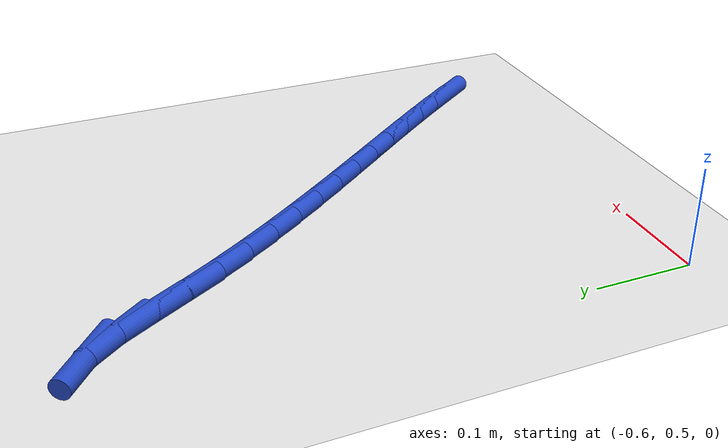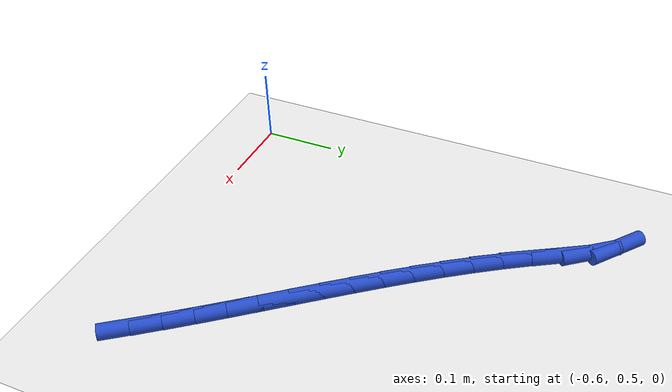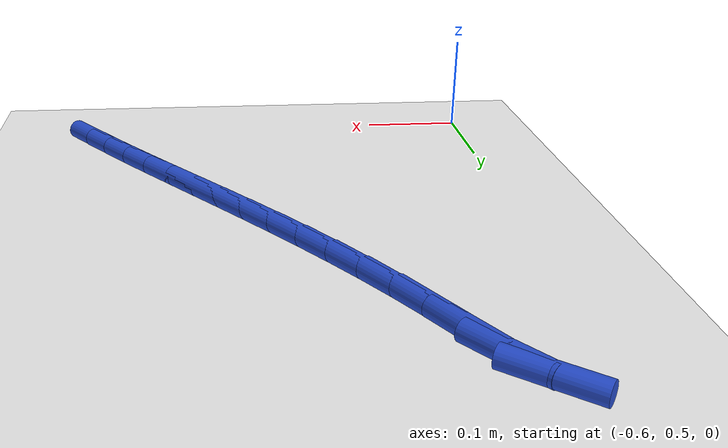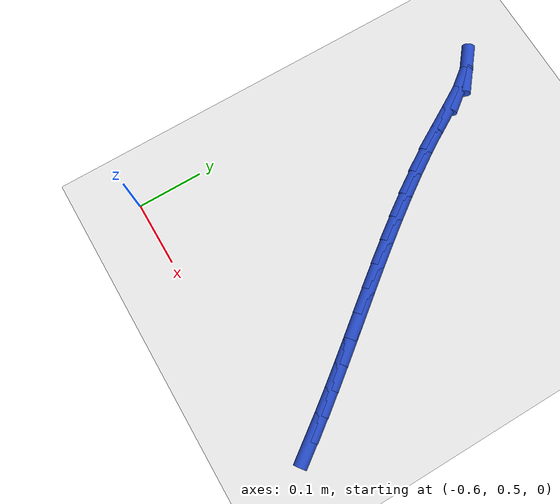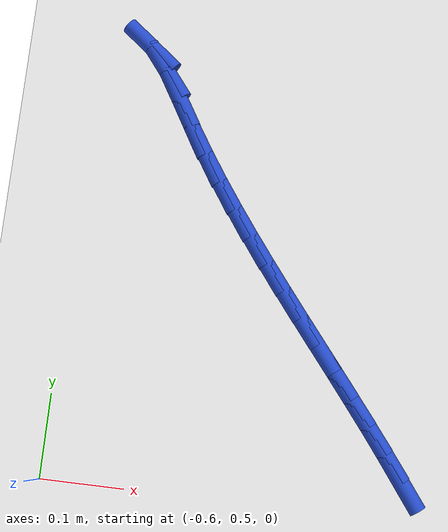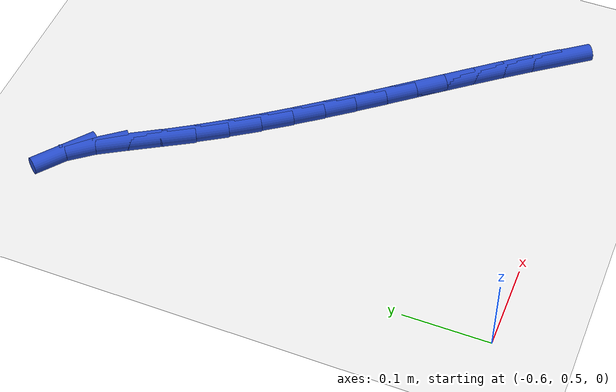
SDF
<sdf version="1.6">
 <world name="default">
  <model name="ground_plane">
   <static>1</static>
   <link name="link">
    <collision name="collision">
     <geometry><plane><normal>0 0 1</normal><size>100 100</size></plane></geometry>
     <surface><friction><ode><mu>100</mu><mu2>50</mu2></ode></friction></surface>
    </collision>
    <visual name="visual">
     <cast_shadows>0</cast_shadows>
     <geometry><plane><normal>0 0 1</normal><size>100 100</size></plane></geometry>
     <material>
      <script><uri>file://media/materials/scripts/gazebo.material</uri><name>Gazebo/WhiteGlow</name></script>
     </material>
    </visual>
   </link>
  </model>
  <model name="line">
   <link name="link_16">
    <pose>-0.1816539350529663 0.5478899287095563 0.01 0 1.57 -0.9353988658795472</pose>
    <collision name="collision">
     <geometry><cylinder><radius>0.01</radius><length>0.08</length></cylinder></geometry>
    </collision>
    <visual name="visual">
     <material>
      <script><name>Gazebo/Blue</name><uri>file://media/materials/scripts/gazebo.material</uri></script>
     </material>
     <geometry><cylinder><radius>0.01</radius><length>0.08</length></cylinder></geometry>
    </visual>
   </link>
   <link name="link_17">
    <pose>-0.203480171302919 0.5774882660531255 0.01 0 1.57 -0.9192884241856238</pose>
    <collision name="collision">
     <geometry><cylinder><radius>0.01</radius><length>0.08</length></cylinder></geometry>
    </collision>
    <visual name="visual">
     <material>
      <script><name>Gazebo/Blue</name><uri>file://media/materials/scripts/gazebo.material</uri></script>
     </material>
     <geometry><cylinder><radius>0.01</radius><length>0.08</length></cylinder></geometry>
    </visual>
   </link>
   <link name="link_18">
    <pose>-0.22589401806881582 0.6068801418976478 0.01 0 1.57 -0.9074345662001893</pose>
    <collision name="collision">
     <geometry><cylinder><radius>0.01</radius><length>0.08</length></cylinder></geometry>
    </collision>
    <visual name="visual">
     <material>
      <script><name>Gazebo/Blue</name><uri>file://media/materials/scripts/gazebo.material</uri></script>
     </material>
     <geometry><cylinder><radius>0.01</radius><length>0.08</length></cylinder></geometry>
    </visual>
   </link>
   <link name="link_19">
    <pose>-0.2487668126718285 0.6361477396780961 0.01 0 1.57 -0.8997659828083222</pose>
    <collision name="collision">
     <geometry><cylinder><radius>0.01</radius><length>0.08</length></cylinder></geometry>
    </collision>
    <visual name="visual">
     <material>
      <script><name>Gazebo/Blue</name><uri>file://media/materials/scripts/gazebo.material</uri></script>
     </material>
     <geometry><cylinder><radius>0.01</radius><length>0.08</length></cylinder></geometry>
    </visual>
   </link>
   <link name="link_20">
    <pose>-0.271969892433129 0.6653732428294441 0.01 0 1.57 -0.8962173230918993</pose>
    <collision name="collision">
     <geometry><cylinder><radius>0.01</radius><length>0.08</length></cylinder></geometry>
    </collision>
    <visual name="visual">
     <material>
      <script><name>Gazebo/Blue</name><uri>file://media/materials/scripts/gazebo.material</uri></script>
     </material>
     <geometry><cylinder><radius>0.01</radius><length>0.08</length></cylinder></geometry>
    </visual>
   </link>
   <link name="link_21">
    <pose>-0.29537459467388916 0.694638834786665 0.01 0 1.57 -0.8967327629448139</pose>
    <collision name="collision">
     <geometry><cylinder><radius>0.01</radius><length>0.08</length></cylinder></geometry>
    </collision>
    <visual name="visual">
     <material>
      <script><name>Gazebo/Blue</name><uri>file://media/materials/scripts/gazebo.material</uri></script>
     </material>
     <geometry><cylinder><radius>0.01</radius><length>0.08</length></cylinder></geometry>
    </visual>
   </link>
   <link name="link_22">
    <pose>-0.3188522567152807 0.7240266989847319 0.01 0 1.57 -0.9012673655954462</pose>
    <collision name="collision">
     <geometry><cylinder><radius>0.01</radius><length>0.08</length></cylinder></geometry>
    </collision>
    <visual name="visual">
     <material>
      <script><name>Gazebo/Blue</name><uri>file://media/materials/scripts/gazebo.material</uri></script>
     </material>
     <geometry><cylinder><radius>0.01</radius><length>0.08</length></cylinder></geometry>
    </visual>
   </link>
   <link name="link_23">
    <pose>-0.34227421587847556 0.7536190188586184 0.01 0 1.57 -0.9097864556969446</pose>
    <collision name="collision">
     <geometry><cylinder><radius>0.01</radius><length>0.08</length></cylinder></geometry>
    </collision>
    <visual name="visual">
     <material>
      <script><name>Gazebo/Blue</name><uri>file://media/materials/scripts/gazebo.material</uri></script>
     </material>
     <geometry><cylinder><radius>0.01</radius><length>0.08</length></cylinder></geometry>
    </visual>
   </link>
   <link name="link_24">
    <pose>-0.36551180948464557 0.7834979778432972 0.01 0 1.57 -0.9222631534774657</pose>
    <collision name="collision">
     <geometry><cylinder><radius>0.01</radius><length>0.08</length></cylinder></geometry>
    </collision>
    <visual name="visual">
     <material>
      <script><name>Gazebo/Blue</name><uri>file://media/materials/scripts/gazebo.material</uri></script>
     </material>
     <geometry><cylinder><radius>0.01</radius><length>0.08</length></cylinder></geometry>
    </visual>
   </link>
   <link name="link_25">
    <pose>-0.38843637485496246 0.813745759373742 0.01 0 1.57 -0.9386741516493533</pose>
    <collision name="collision">
     <geometry><cylinder><radius>0.01</radius><length>0.08</length></cylinder></geometry>
    </collision>
    <visual name="visual">
     <material>
      <script><name>Gazebo/Blue</name><uri>file://media/materials/scripts/gazebo.material</uri></script>
     </material>
     <geometry><cylinder><radius>0.01</radius><length>0.08</length></cylinder></geometry>
    </visual>
   </link>
   <link name="link_26">
    <pose>-0.41091924931059826 0.8444445468849261 0.01 0 1.57 -0.9589937853042427</pose>
    <collision name="collision">
     <geometry><cylinder><radius>0.01</radius><length>0.08</length></cylinder></geometry>
    </collision>
    <visual name="visual">
     <material>
      <script><name>Gazebo/Blue</name><uri>file://media/materials/scripts/gazebo.material</uri></script>
     </material>
     <geometry><cylinder><radius>0.01</radius><length>0.08</length></cylinder></geometry>
    </visual>
   </link>
   <link name="link_27">
    <pose>-0.43283177017272473 0.8756765238118227 0.01 0 1.57 -0.9831864619062438</pose>
    <collision name="collision">
     <geometry><cylinder><radius>0.01</radius><length>0.08</length></cylinder></geometry>
    </collision>
    <visual name="visual">
     <material>
      <script><name>Gazebo/Blue</name><uri>file://media/materials/scripts/gazebo.material</uri></script>
     </material>
     <geometry><cylinder><radius>0.01</radius><length>0.08</length></cylinder></geometry>
    </visual>
   </link>
   <link name="link_28">
    <pose>-0.45404527476251366 0.907523873589405 0.01 0 1.57 -1.0111976013252622</pose>
    <collision name="collision">
     <geometry><cylinder><radius>0.01</radius><length>0.08</length></cylinder></geometry>
    </collision>
    <visual name="visual">
     <material>
      <script><name>Gazebo/Blue</name><uri>file://media/materials/scripts/gazebo.material</uri></script>
     </material>
     <geometry><cylinder><radius>0.01</radius><length>0.08</length></cylinder></geometry>
    </visual>
   </link>
   <link name="link_29">
    <pose>-0.4744311004011368 0.9400687796526459 0.01 0 1.57 -1.0420186037411419</pose>
    <collision name="collision">
     <geometry><cylinder><radius>0.01</radius><length>0.08</length></cylinder></geometry>
    </collision>
    <visual name="visual">
     <material>
      <script><name>Gazebo/Blue</name><uri>file://media/materials/scripts/gazebo.material</uri></script>
     </material>
     <geometry><cylinder><radius>0.01</radius><length>0.08</length></cylinder></geometry>
    </visual>
   </link>
   <link name="link_30">
    <pose>-0.49388287030590694 0.973360853594182 0.01 0 1.57 -1.0315417846794845</pose>
    <collision name="collision">
     <geometry><cylinder><radius>0.01</radius><length>0.08</length></cylinder></geometry>
    </collision>
    <visual name="visual">
     <material>
      <script><name>Gazebo/Blue</name><uri>file://media/materials/scripts/gazebo.material</uri></script>
     </material>
     <geometry><cylinder><radius>0.01</radius><length>0.08</length></cylinder></geometry>
    </visual>
   </link>
   <link name="link_31">
    <pose>-0.5133546952859124 1.0058997565616263 0.01 0 1.57 -0.9075513861924633</pose>
    <collision name="collision">
     <geometry><cylinder><radius>0.01</radius><length>0.08</length></cylinder></geometry>
    </collision>
    <visual name="visual">
     <material>
      <script><name>Gazebo/Blue</name><uri>file://media/materials/scripts/gazebo.material</uri></script>
     </material>
     <geometry><cylinder><radius>0.01</radius><length>0.08</length></cylinder></geometry>
    </visual>
   </link>
   <link name="link_32">
    <pose>-0.5353023818814912 1.0339903664669332 0.01 0 1.57 -0.6685776298659545</pose>
    <collision name="collision">
     <geometry><cylinder><radius>0.01</radius><length>0.08</length></cylinder></geometry>
    </collision>
    <visual name="visual">
     <material>
      <script><name>Gazebo/Blue</name><uri>file://media/materials/scripts/gazebo.material</uri></script>
     </material>
     <geometry><cylinder><radius>0.01</radius><length>0.08</length></cylinder></geometry>
    </visual>
   </link>
  </model>
 </world>
</sdf>
